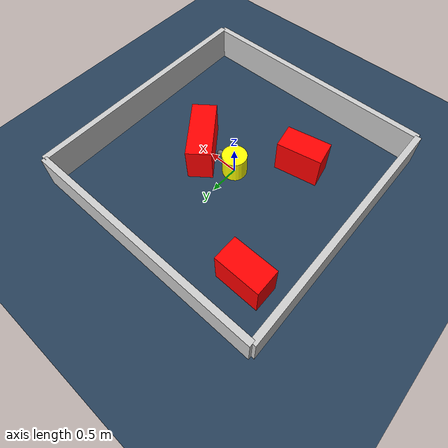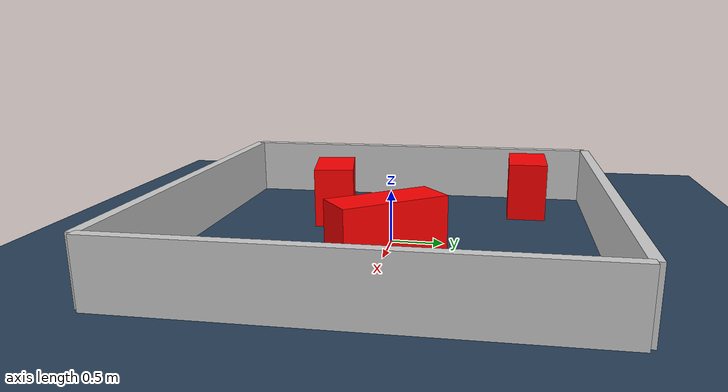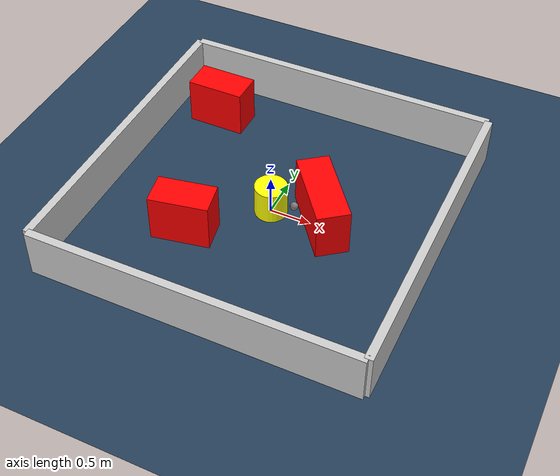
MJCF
<?xml version="1.0" ?>
<mujoco model="generated_environment">
  <option timestep="0.01" integrator="RK4" cone="elliptic"/>
  <default>
    <geom density="1"/>
  </default>
  <asset>
    <texture builtin="gradient" height="3072" rgb1="0.3 0.5 0.7" rgb2="0 0 0" type="skybox" width="512"/>
    <texture builtin="checker" height="300" mark="edge" markrgb="0.8 0.8 0.8" name="groundplane" rgb1="0.2 0.3 0.4" rgb2="0.1 0.2 0.3" type="2d" width="300"/>
    <material name="groundplane" reflectance="0.2" texrepeat="5 5" texture="groundplane" texuniform="true"/>
    <material name="robot" rgba="0.0 1.0 0.0 1"/>
  </asset>
  <worldbody>
    <light dir="0 0 -1" directional="true" pos="0 0 1.5"/>
    <geom condim="4" friction="1.0 0.005 0.001" material="groundplane" name="floor" size="0 0 0.05" type="plane"/>
    <body name="walls">
      <geom name="wall_1" condim="4" pos="-2.0 0.0 0.3" rgba="0.800000011920929 0.800000011920929 0.800000011920929 1.0" size="0.05 2.0 0.3" type="box"/>
      <geom name="wall_2" condim="4" pos="2.0 0.0 0.3" rgba="0.800000011920929 0.800000011920929 0.800000011920929 1.0" size="0.05 2.0 0.3" type="box"/>
      <geom name="wall_3" condim="4" pos="0.0 -2.0 0.3" rgba="0.800000011920929 0.800000011920929 0.800000011920929 1.0" size="2.0 0.05 0.3" type="box"/>
      <geom name="wall_4" condim="4" pos="0.0 2.0 0.3" rgba="0.800000011920929 0.800000011920929 0.800000011920929 1.0" size="2.0 0.05 0.3" type="box"/>
    </body>
    <body name="robot">
      <joint name="joint_x" type="slide" pos="0 0 0" axis="1 0 0"/>
      <joint name="joint_y" type="slide" pos="0 0 0" axis="0 1 0"/>
      <geom name="robot" type="sphere" pos="0.3 0.0 0.2" size="0.05" mass="5." friction="1.0 0.005 0.0001" condim="4" rgba="0.5 0.5 0.5 1.0"/>
      <site name="sensor_ball"/>
    </body>
    <body name="obstacle_movable_1">
      <geom name="obstacle_movable_1" condim="4" pos="0.0 0.0 0.2" euler="0 0 0.0" friction="1.0 0.005 0.001" rgba="1.0 1.0 0.0 1.0" size="0.2 0.2 0.0" type="cylinder" mass="0.1"/>
      <joint type="free"/>
    </body>
    <body name="obstacle_2_static">
      <geom name="obstacle_2_static" condim="4" pos="0.6318001750703224 0.05518392085894308 0.3" euler="0 0 127.52330238763551" friction="1.0 0.005 0.001" rgba="1 0 0 1" size="0.5039734994789494 0.2 0.3" type="box"/>
    </body>
    <body name="obstacle_3_static">
      <geom name="obstacle_3_static" condim="4" pos="-1.3304529735980126 1.317691924421424 0.3" euler="0 0 359.62041187116455" friction="1.0 0.005 0.001" rgba="1 0 0 1" size="0.3627961820303451 0.2 0.3" type="box"/>
    </body>
    <body name="obstacle_4_static">
      <geom name="obstacle_4_static" condim="4" pos="-0.7619220278598703 -0.7327468993914432 0.3" euler="0 0 190.6754016482808" friction="1.0 0.005 0.001" rgba="1 0 0 1" size="0.35828519900216826 0.2 0.3" type="box"/>
    </body>
  </worldbody>
  <actuator>
    <motor name="actuator_x" joint="joint_x" gear="1" ctrlrange="-1 1"/>
    <motor name="actuator_y" joint="joint_y" gear="1" ctrlrange="-1 1"/>
  </actuator>
</mujoco>
